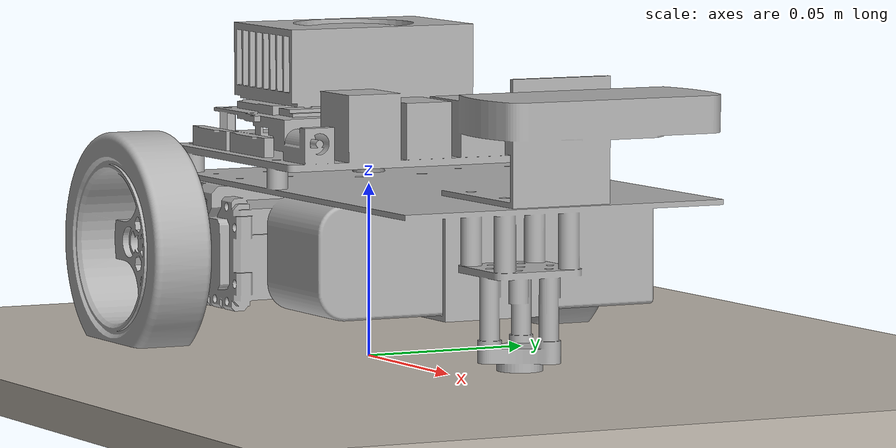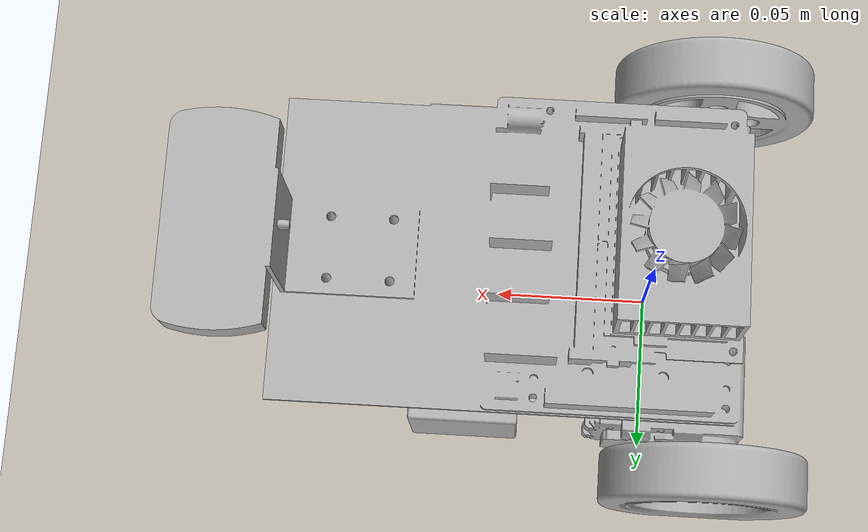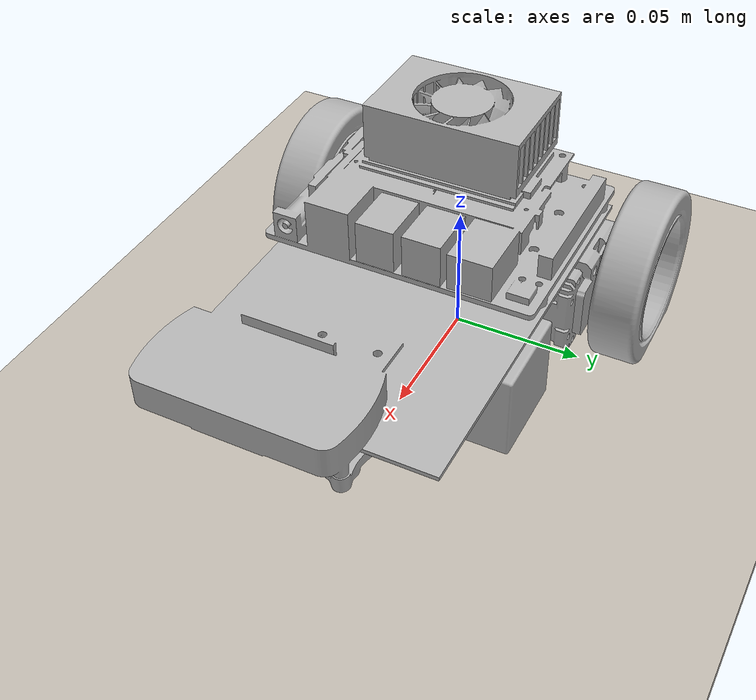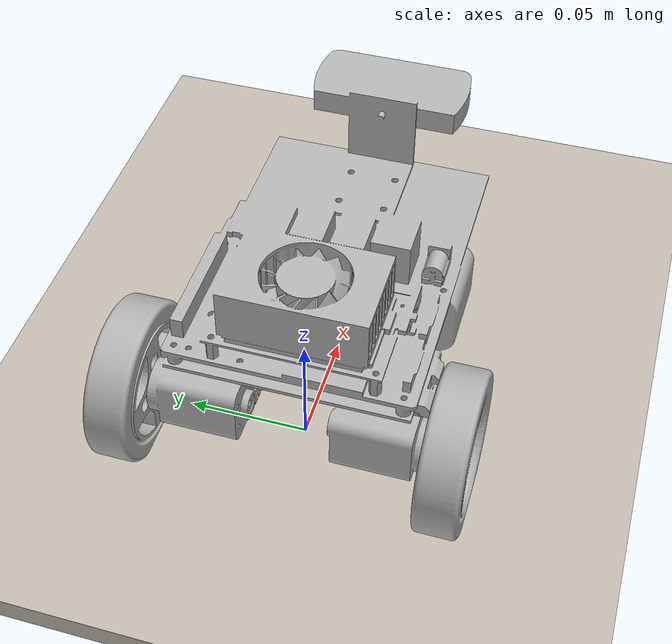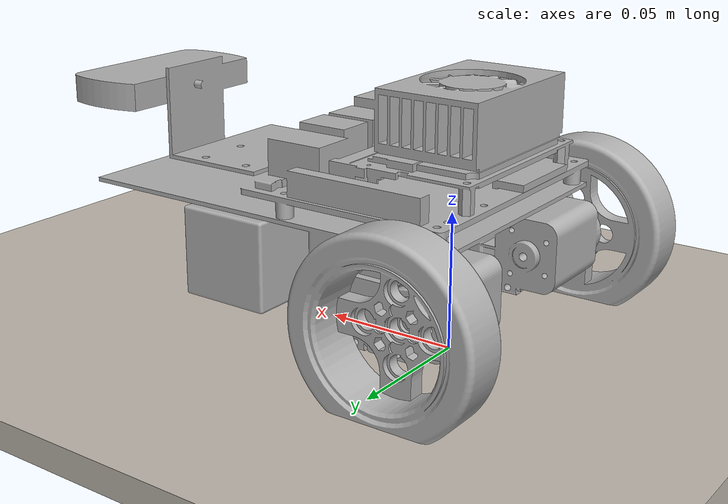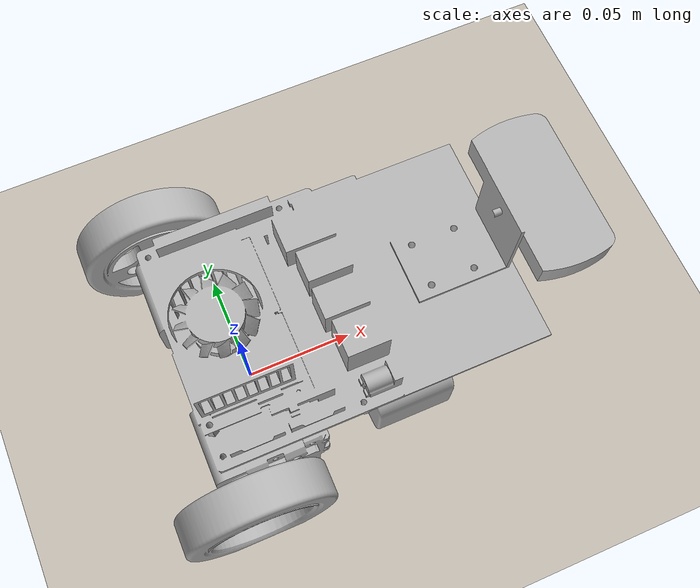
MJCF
<mujoco model="robot">
  <default>
    <joint limited="false" damping="0.01" armature="0.01" frictionloss="0.01" />
    <geom condim="4" contype="1" conaffinity="15" friction="0.9 0.2 0.2" solref="0.001 2" />
  </default>

  <compiler angle="radian" meshdir="../meshes/line_follower_robot" eulerseq="zyx" autolimits="true" />

  <asset>
    <texture name="texplane" type="2d" builtin="checker" rgb1=".0 .0 .0" rgb2=".8 .8 .8" width="100"
      height="100" />
    <material name="matplane" reflectance="0." texture="texplane" texrepeat="1 1" texuniform="true" />
    <material name="default_material" rgba="0.7 0.7 0.7 1" />
    <mesh name="base.stl" file="base.stl" />
    <mesh name="base.dae" file="base.stl" />
    <mesh name="wheel.stl" file="wheel.stl" />
    <mesh name="wheel.dae" file="wheel.stl" />
    <!-- Load the stage obj; explicitly defining the material to ensure texture loads -->
    <mesh name="stage" file="../stage/stage.obj" />
    <texture name="stage_tex" type="2d" file="../meshes/stage/stage.png" />
    <material name="stage_mat" texture="stage_tex" specular="0.0" shininess="0.0" />
  </asset>

  <worldbody>
    <light directional="true" diffuse="0.4 0.4 0.4" specular="0.1 0.1 0.1" pos="0 0 5.0"
      dir="0 0 -1" castshadow="false" />
    <light directional="true" diffuse="0.6 0.6 0.6" specular="0.2 0.2 0.2" pos="0 0 4" dir="0 0 -1" />

    <!-- The line following stage -->
    <body name="stage_body" pos="0 0 0.001" euler="0 0 1.570796">
      <geom name="stage_geom" type="mesh" mesh="stage" material="stage_mat" condim="3"
        conaffinity="15" />
    </body>
    <body name="base_link" pos="0 0 0.052">
      <freejoint name="root" />
      <site name="root_site" pos="0 0 0" />
      <inertial pos="0 0 0" mass="0.7" diaginertia="0.003 0.003 0.006" />
      <geom name="base_link_collision_0" type="mesh" mesh="base.stl" rgba="0 0 0 0" />
      <geom name="base_link_visual_0" material="default_material" type="mesh" mesh="base.dae" />

      <body name="left_wheel_link" pos="-0.01875 0.065 -0.019">
        <joint name="left_wheel_joint" type="hinge" axis="0 1 0" />
        <inertial pos="0.0 -0.001 0.0" mass="0.036" diaginertia="1.4072e-05 2.6303e-05 1.4072e-05" />
        <geom name="left_wheel_link_collision_0" type="mesh" mesh="wheel.stl" rgba="0 0 0 0" />
        <geom name="left_wheel_link_visual_0" material="default_material" type="mesh"
          mesh="wheel.dae" />
      </body>

      <body name="right_wheel_link" pos="-0.01875 -0.065 -0.019" quat="0.0 0.0 0.0 1.0">
        <joint name="right_wheel_joint" type="hinge" axis="0 -1 0" />
        <inertial pos="0.0 -0.001 0.0" mass="0.036" diaginertia="1.4072e-05 2.6303e-05 1.4072e-05" />
        <geom name="right_wheel_link_collision_0" type="mesh" mesh="wheel.stl" rgba="0 0 0 0" />
        <geom name="right_wheel_link_visual_0" material="default_material" type="mesh"
          mesh="wheel.dae" />
      </body>

      <!-- Caster: fixed sphere, no joints — slides freely on ground. Stable alternative to
           the 3-DOF yaw/roll/pitch chain which causes numerical oscillation in MuJoCo -->
      <body name="caster_link" pos="0.093283 0 -0.047">
        <inertial pos="0 0 0" mass="0.001" diaginertia="4e-08 4e-08 4e-08" />
        <geom name="caster_geom" type="sphere" size="0.005"
          friction="0.01 0.005 0.005" material="default_material" />
      </body>
      <body name="camera_link" pos="0.134 0 0.0225" euler="-1.5707 0 0">
        <camera name="line_camera" mode="fixed" pos="0 0 0" euler="0 0 0" fovy="60" />
      </body>
    </body>
  </worldbody>

  <actuator>
    <velocity name="left_wheel_joint_ctrl" joint="left_wheel_joint" ctrlrange="-20 20"
      ctrllimited="true" />
    <velocity name="right_wheel_joint_ctrl" joint="right_wheel_joint" ctrlrange="-20 20"
      ctrllimited="true" />
  </actuator>

</mujoco>
